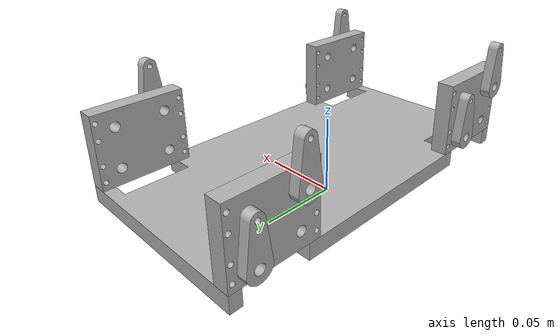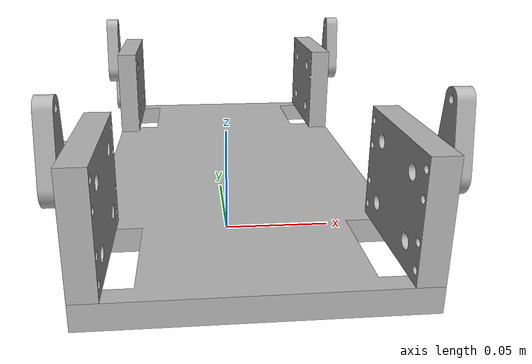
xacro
<?xml version="1.0" ?>
<robot name="quad_bot" xmlns:xacro="http://www.ros.org/wiki/xacro">

<xacro:include filename="$(find quad_bot_description)/urdf/materials.xacro" />
<xacro:include filename="$(find quad_bot_description)/urdf/quad_bot.trans" />
<xacro:include filename="$(find quad_bot_description)/urdf/quad_bot.gazebo" />
<link name="base_link">
  <inertial>
    <origin xyz="0.0037301551208653735 0.01022454196037646 0.024166462621581574" rpy="0 0 0"/>
    <mass value="1.8212"/>
    <inertia ixx="0.006618" iyy="0.001866" izz="0.008454" ixy="0.0" iyz="0.0" ixz="-0.0"/>
  </inertial>
  <visual>
    <origin xyz="0 0 0" rpy="0 0 0"/>
    <geometry>
      <mesh filename="file://$(find quad_bot_description)/meshes/base_link.stl" scale="0.001 0.001 0.001"/>
    </geometry>
    <material name="silver"/>
  </visual>
  <collision>
    <origin xyz="0 0 0" rpy="0 0 0"/>
    <geometry>
      <mesh filename="file://$(find quad_bot_description)/meshes/base_link.stl" scale="0.001 0.001 0.001"/>
    </geometry>
  </collision>
</link>

<link name="urdf_case3_1">
  <inertial>
    <origin xyz="-0.004999844879134685 -0.027250458039643377 0.022500462621581573" rpy="0 0 0"/>
    <mass value="0.17920403874143231"/>
    <inertia ixx="7.3e-05" iyy="3.2e-05" izz="4.4e-05" ixy="0.0" iyz="0.0" ixz="0.0"/>
  </inertial>
  <visual>
    <origin xyz="-0.06373 -0.120225 -0.029166" rpy="0 0 0"/>
    <geometry>
      <mesh filename="file://$(find quad_bot_description)/meshes/urdf_case3_1.stl" scale="0.001 0.001 0.001"/>
    </geometry>
    <material name="silver"/>
  </visual>
  <collision>
    <origin xyz="-0.06373 -0.120225 -0.029166" rpy="0 0 0"/>
    <geometry>
      <mesh filename="file://$(find quad_bot_description)/meshes/urdf_case3_1.stl" scale="0.001 0.001 0.001"/>
    </geometry>
  </collision>
</link>

<link name="urdf_case1_1">
  <inertial>
    <origin xyz="-0.004999844879134699 0.0272495419603572 0.022500462621581823" rpy="0 0 0"/>
    <mass value="0.17920403874143231"/>
    <inertia ixx="7.3e-05" iyy="3.2e-05" izz="4.4e-05" ixy="-0.0" iyz="0.0" ixz="0.0"/>
  </inertial>
  <visual>
    <origin xyz="-0.06373 0.099775 -0.029166" rpy="0 0 0"/>
    <geometry>
      <mesh filename="file://$(find quad_bot_description)/meshes/urdf_case1_1.stl" scale="0.001 0.001 0.001"/>
    </geometry>
    <material name="silver"/>
  </visual>
  <collision>
    <origin xyz="-0.06373 0.099775 -0.029166" rpy="0 0 0"/>
    <geometry>
      <mesh filename="file://$(find quad_bot_description)/meshes/urdf_case1_1.stl" scale="0.001 0.001 0.001"/>
    </geometry>
  </collision>
</link>

<link name="urdf_case4_1">
  <inertial>
    <origin xyz="0.005000155120865435 -0.027250458039643252 0.0225004626215816" rpy="0 0 0"/>
    <mass value="0.17920403874143234"/>
    <inertia ixx="7.3e-05" iyy="3.2e-05" izz="4.4e-05" ixy="0.0" iyz="0.0" ixz="0.0"/>
  </inertial>
  <visual>
    <origin xyz="0.05627 -0.120225 -0.029166" rpy="0 0 0"/>
    <geometry>
      <mesh filename="file://$(find quad_bot_description)/meshes/urdf_case4_1.stl" scale="0.001 0.001 0.001"/>
    </geometry>
    <material name="silver"/>
  </visual>
  <collision>
    <origin xyz="0.05627 -0.120225 -0.029166" rpy="0 0 0"/>
    <geometry>
      <mesh filename="file://$(find quad_bot_description)/meshes/urdf_case4_1.stl" scale="0.001 0.001 0.001"/>
    </geometry>
  </collision>
</link>

<link name="urdf_case2_1">
  <inertial>
    <origin xyz="0.005000155120865442 0.027249541960357282 0.02250046262158178" rpy="0 0 0"/>
    <mass value="0.17920403874143231"/>
    <inertia ixx="7.3e-05" iyy="3.2e-05" izz="4.4e-05" ixy="0.0" iyz="0.0" ixz="0.0"/>
  </inertial>
  <visual>
    <origin xyz="0.05627 0.099775 -0.029166" rpy="0 0 0"/>
    <geometry>
      <mesh filename="file://$(find quad_bot_description)/meshes/urdf_case2_1.stl" scale="0.001 0.001 0.001"/>
    </geometry>
    <material name="silver"/>
  </visual>
  <collision>
    <origin xyz="0.05627 0.099775 -0.029166" rpy="0 0 0"/>
    <geometry>
      <mesh filename="file://$(find quad_bot_description)/meshes/urdf_case2_1.stl" scale="0.001 0.001 0.001"/>
    </geometry>
  </collision>
</link>

<link name="arm_r1_1">
  <inertial>
    <origin xyz="0.0030001551208652943 -0.00012515202258291114 0.00898164156127182" rpy="0 0 0"/>
    <mass value="0.016544213046378313"/>
    <inertia ixx="2e-06" iyy="1e-06" izz="0.0" ixy="-0.0" iyz="0.0" ixz="0.0"/>
  </inertial>
  <visual>
    <origin xyz="-0.06373 0.087275 -0.064166" rpy="0 0 0"/>
    <geometry>
      <mesh filename="file://$(find quad_bot_description)/meshes/arm_r1_1.stl" scale="0.001 0.001 0.001"/>
    </geometry>
    <material name="silver"/>
  </visual>
  <collision>
    <origin xyz="-0.06373 0.087275 -0.064166" rpy="0 0 0"/>
    <geometry>
      <mesh filename="file://$(find quad_bot_description)/meshes/arm_r1_1.stl" scale="0.001 0.001 0.001"/>
    </geometry>
  </collision>
</link>

<link name="arm_r2_1">
  <inertial>
    <origin xyz="0.003000155120865239 -0.00012515202258289032 0.008981641561271791" rpy="0 0 0"/>
    <mass value="0.016544213046378313"/>
    <inertia ixx="2e-06" iyy="1e-06" izz="0.0" ixy="-0.0" iyz="0.0" ixz="0.0"/>
  </inertial>
  <visual>
    <origin xyz="-0.06373 0.057775 -0.039166" rpy="0 0 0"/>
    <geometry>
      <mesh filename="file://$(find quad_bot_description)/meshes/arm_r2_1.stl" scale="0.001 0.001 0.001"/>
    </geometry>
    <material name="silver"/>
  </visual>
  <collision>
    <origin xyz="-0.06373 0.057775 -0.039166" rpy="0 0 0"/>
    <geometry>
      <mesh filename="file://$(find quad_bot_description)/meshes/arm_r2_1.stl" scale="0.001 0.001 0.001"/>
    </geometry>
  </collision>
</link>

<link name="arm_r3_1">
  <inertial>
    <origin xyz="0.0030001551208652666 -0.00012515202258359115 0.00898164156127168" rpy="0 0 0"/>
    <mass value="0.016544213046378313"/>
    <inertia ixx="2e-06" iyy="1e-06" izz="0.0" ixy="-0.0" iyz="0.0" ixz="0.0"/>
  </inertial>
  <visual>
    <origin xyz="-0.06373 -0.078225 -0.064166" rpy="0 0 0"/>
    <geometry>
      <mesh filename="file://$(find quad_bot_description)/meshes/arm_r3_1.stl" scale="0.001 0.001 0.001"/>
    </geometry>
    <material name="silver"/>
  </visual>
  <collision>
    <origin xyz="-0.06373 -0.078225 -0.064166" rpy="0 0 0"/>
    <geometry>
      <mesh filename="file://$(find quad_bot_description)/meshes/arm_r3_1.stl" scale="0.001 0.001 0.001"/>
    </geometry>
  </collision>
</link>

<link name="arm_r4_1">
  <inertial>
    <origin xyz="0.0030001551208652805 -0.00012515202258320257 0.008981641561271542" rpy="0 0 0"/>
    <mass value="0.016544213046378313"/>
    <inertia ixx="2e-06" iyy="1e-06" izz="0.0" ixy="-0.0" iyz="0.0" ixz="0.0"/>
  </inertial>
  <visual>
    <origin xyz="-0.06373 -0.107725 -0.039166" rpy="0 0 0"/>
    <geometry>
      <mesh filename="file://$(find quad_bot_description)/meshes/arm_r4_1.stl" scale="0.001 0.001 0.001"/>
    </geometry>
    <material name="silver"/>
  </visual>
  <collision>
    <origin xyz="-0.06373 -0.107725 -0.039166" rpy="0 0 0"/>
    <geometry>
      <mesh filename="file://$(find quad_bot_description)/meshes/arm_r4_1.stl" scale="0.001 0.001 0.001"/>
    </geometry>
  </collision>
</link>

<link name="arm_l1_1">
  <inertial>
    <origin xyz="-0.0029998448791346 -0.00012515202258309155 0.008981641561271791" rpy="0 0 0"/>
    <mass value="0.016544213046378313"/>
    <inertia ixx="2e-06" iyy="1e-06" izz="0.0" ixy="-0.0" iyz="0.0" ixz="0.0"/>
  </inertial>
  <visual>
    <origin xyz="0.05627 0.087275 -0.064166" rpy="0 0 0"/>
    <geometry>
      <mesh filename="file://$(find quad_bot_description)/meshes/arm_l1_1.stl" scale="0.001 0.001 0.001"/>
    </geometry>
    <material name="silver"/>
  </visual>
  <collision>
    <origin xyz="0.05627 0.087275 -0.064166" rpy="0 0 0"/>
    <geometry>
      <mesh filename="file://$(find quad_bot_description)/meshes/arm_l1_1.stl" scale="0.001 0.001 0.001"/>
    </geometry>
  </collision>
</link>

<link name="arm_l2_1">
  <inertial>
    <origin xyz="-0.002999844879134586 -0.0001251520225830985 0.008981641561271826" rpy="0 0 0"/>
    <mass value="0.016544213046378313"/>
    <inertia ixx="2e-06" iyy="1e-06" izz="0.0" ixy="-0.0" iyz="0.0" ixz="0.0"/>
  </inertial>
  <visual>
    <origin xyz="0.05627 0.057775 -0.039166" rpy="0 0 0"/>
    <geometry>
      <mesh filename="file://$(find quad_bot_description)/meshes/arm_l2_1.stl" scale="0.001 0.001 0.001"/>
    </geometry>
    <material name="silver"/>
  </visual>
  <collision>
    <origin xyz="0.05627 0.057775 -0.039166" rpy="0 0 0"/>
    <geometry>
      <mesh filename="file://$(find quad_bot_description)/meshes/arm_l2_1.stl" scale="0.001 0.001 0.001"/>
    </geometry>
  </collision>
</link>

<link name="arm_l3_1">
  <inertial>
    <origin xyz="-0.0029998448791346 -0.00012515202258372993 0.00898164156127168" rpy="0 0 0"/>
    <mass value="0.016544213046378313"/>
    <inertia ixx="2e-06" iyy="1e-06" izz="0.0" ixy="-0.0" iyz="0.0" ixz="0.0"/>
  </inertial>
  <visual>
    <origin xyz="0.05627 -0.078225 -0.064166" rpy="0 0 0"/>
    <geometry>
      <mesh filename="file://$(find quad_bot_description)/meshes/arm_l3_1.stl" scale="0.001 0.001 0.001"/>
    </geometry>
    <material name="silver"/>
  </visual>
  <collision>
    <origin xyz="0.05627 -0.078225 -0.064166" rpy="0 0 0"/>
    <geometry>
      <mesh filename="file://$(find quad_bot_description)/meshes/arm_l3_1.stl" scale="0.001 0.001 0.001"/>
    </geometry>
  </collision>
</link>

<link name="arm_l4_1">
  <inertial>
    <origin xyz="-0.0029998448791345167 -0.0001251520225830638 0.008981641561271646" rpy="0 0 0"/>
    <mass value="0.016544213046378313"/>
    <inertia ixx="2e-06" iyy="1e-06" izz="0.0" ixy="-0.0" iyz="0.0" ixz="0.0"/>
  </inertial>
  <visual>
    <origin xyz="0.05627 -0.107725 -0.039166" rpy="0 0 0"/>
    <geometry>
      <mesh filename="file://$(find quad_bot_description)/meshes/arm_l4_1.stl" scale="0.001 0.001 0.001"/>
    </geometry>
    <material name="silver"/>
  </visual>
  <collision>
    <origin xyz="0.05627 -0.107725 -0.039166" rpy="0 0 0"/>
    <geometry>
      <mesh filename="file://$(find quad_bot_description)/meshes/arm_l4_1.stl" scale="0.001 0.001 0.001"/>
    </geometry>
  </collision>
</link>

<joint name="Rigid 5" type="fixed">
  <origin xyz="0.06373 0.120225 0.029166" rpy="0 0 0"/>
  <parent link="base_link"/>
  <child link="urdf_case3_1"/>
</joint>

<joint name="Rigid 6" type="fixed">
  <origin xyz="0.06373 -0.099775 0.029166" rpy="0 0 0"/>
  <parent link="base_link"/>
  <child link="urdf_case1_1"/>
</joint>

<joint name="Rigid 7" type="fixed">
  <origin xyz="-0.05627 0.120225 0.029166" rpy="0 0 0"/>
  <parent link="base_link"/>
  <child link="urdf_case4_1"/>
</joint>

<joint name="Rigid 8" type="fixed">
  <origin xyz="-0.05627 -0.099775 0.029166" rpy="0 0 0"/>
  <parent link="base_link"/>
  <child link="urdf_case2_1"/>
</joint>

<joint name="rr1" type="continuous">
  <origin xyz="0.0 0.0125 0.035" rpy="0 0 0"/>
  <parent link="urdf_case1_1"/>
  <child link="arm_r1_1"/>
  <axis xyz="-1.0 -0.0 0.0"/>
</joint>

<joint name="rr2" type="continuous">
  <origin xyz="0.0 0.042 0.01" rpy="0 0 0"/>
  <parent link="urdf_case1_1"/>
  <child link="arm_r2_1"/>
  <axis xyz="-1.0 -0.0 0.0"/>
</joint>

<joint name="rr3" type="continuous">
  <origin xyz="0.0 -0.042 0.035" rpy="0 0 0"/>
  <parent link="urdf_case3_1"/>
  <child link="arm_r3_1"/>
  <axis xyz="-1.0 -0.0 -0.0"/>
</joint>

<joint name="rr4" type="continuous">
  <origin xyz="0.0 -0.0125 0.01" rpy="0 0 0"/>
  <parent link="urdf_case3_1"/>
  <child link="arm_r4_1"/>
  <axis xyz="-1.0 -0.0 -0.0"/>
</joint>

<joint name="lr1" type="continuous">
  <origin xyz="0.0 0.0125 0.035" rpy="0 0 0"/>
  <parent link="urdf_case2_1"/>
  <child link="arm_l1_1"/>
  <axis xyz="-1.0 -0.0 -0.0"/>
</joint>

<joint name="lr2" type="continuous">
  <origin xyz="0.0 0.042 0.01" rpy="0 0 0"/>
  <parent link="urdf_case2_1"/>
  <child link="arm_l2_1"/>
  <axis xyz="-1.0 -0.0 -0.0"/>
</joint>

<joint name="lr3" type="continuous">
  <origin xyz="0.0 -0.042 0.035" rpy="0 0 0"/>
  <parent link="urdf_case4_1"/>
  <child link="arm_l3_1"/>
  <axis xyz="-1.0 -0.0 -0.0"/>
</joint>

<joint name="lr4" type="continuous">
  <origin xyz="0.0 -0.0125 0.01" rpy="0 0 0"/>
  <parent link="urdf_case4_1"/>
  <child link="arm_l4_1"/>
  <axis xyz="-1.0 -0.0 -0.0"/>
</joint>

</robot>

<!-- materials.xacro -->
<robot name="quad_bot" xmlns:xacro="http://www.ros.org/wiki/xacro" >

<material name="silver">
  <color rgba="0.700 0.700 0.700 1.000"/>
</material>

</robot>

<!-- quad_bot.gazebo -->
<robot name="quad_bot" xmlns:xacro="http://www.ros.org/wiki/xacro" >

<xacro:property name="body_color" value="Gazebo/Silver" />

<gazebo>
  <plugin name="control" filename="libgazebo_ros_control.so"/>
</gazebo>
<gazebo reference="base_link">
  <material>${body_color}</material>
  <mu1>0.2</mu1>
  <mu2>0.2</mu2>
  <self_collide>true</self_collide>
  <gravity>true</gravity>
</gazebo>

<gazebo reference="urdf_case3_1">
  <material>${body_color}</material>
  <mu1>0.2</mu1>
  <mu2>0.2</mu2>
  <self_collide>true</self_collide>
</gazebo>

<gazebo reference="urdf_case1_1">
  <material>${body_color}</material>
  <mu1>0.2</mu1>
  <mu2>0.2</mu2>
  <self_collide>true</self_collide>
</gazebo>

<gazebo reference="urdf_case4_1">
  <material>${body_color}</material>
  <mu1>0.2</mu1>
  <mu2>0.2</mu2>
  <self_collide>true</self_collide>
</gazebo>

<gazebo reference="urdf_case2_1">
  <material>${body_color}</material>
  <mu1>0.2</mu1>
  <mu2>0.2</mu2>
  <self_collide>true</self_collide>
</gazebo>

<gazebo reference="arm_r1_1">
  <material>${body_color}</material>
  <mu1>0.2</mu1>
  <mu2>0.2</mu2>
  <self_collide>true</self_collide>
</gazebo>

<gazebo reference="arm_r2_1">
  <material>${body_color}</material>
  <mu1>0.2</mu1>
  <mu2>0.2</mu2>
  <self_collide>true</self_collide>
</gazebo>

<gazebo reference="arm_r3_1">
  <material>${body_color}</material>
  <mu1>0.2</mu1>
  <mu2>0.2</mu2>
  <self_collide>true</self_collide>
</gazebo>

<gazebo reference="arm_r4_1">
  <material>${body_color}</material>
  <mu1>0.2</mu1>
  <mu2>0.2</mu2>
  <self_collide>true</self_collide>
</gazebo>

<gazebo reference="arm_l1_1">
  <material>${body_color}</material>
  <mu1>0.2</mu1>
  <mu2>0.2</mu2>
  <self_collide>true</self_collide>
</gazebo>

<gazebo reference="arm_l2_1">
  <material>${body_color}</material>
  <mu1>0.2</mu1>
  <mu2>0.2</mu2>
  <self_collide>true</self_collide>
</gazebo>

<gazebo reference="arm_l3_1">
  <material>${body_color}</material>
  <mu1>0.2</mu1>
  <mu2>0.2</mu2>
  <self_collide>true</self_collide>
</gazebo>

<gazebo reference="arm_l4_1">
  <material>${body_color}</material>
  <mu1>0.2</mu1>
  <mu2>0.2</mu2>
  <self_collide>true</self_collide>
</gazebo>

</robot>
